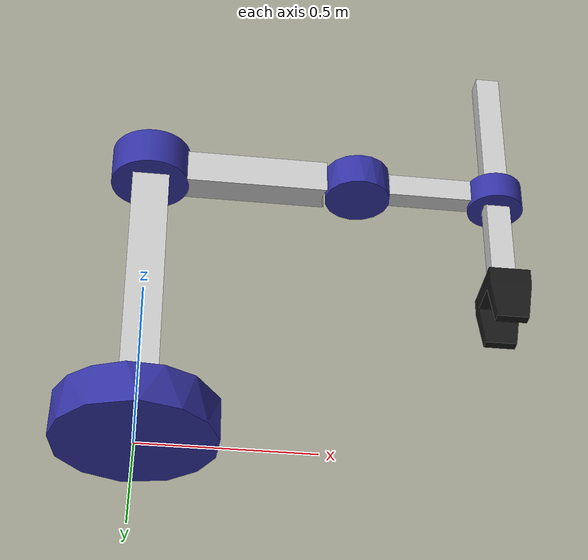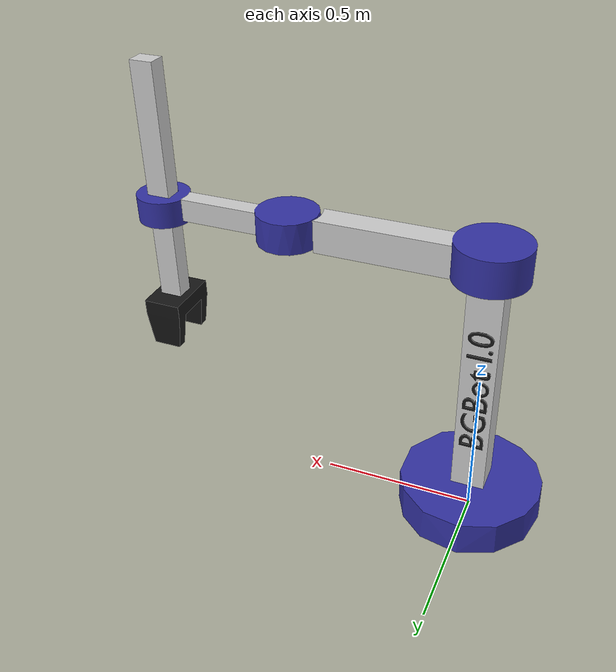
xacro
<?xml version="1.0" ?>

<robot name="robotiq_85_gripper" xmlns:xacro="http://ros.org/wiki/xacro">

  <!-- Properties  -->
  <xacro:property name="height_from_floor" value="0"/>

  <xacro:property name="base_height" value="0.115"/>
  <xacro:property name="base_radius" value="0.231"/>
  <xacro:property name="base_mass" value="10.0"/>

  <xacro:property name="joint_radius" value="0.109"/>
  <xacro:property name="joint_height" value="0.08"/>
  <xacro:property name="joint_mass" value="0.3"/>

  <xacro:property name="link1_thick" value="0.109"/>
  <xacro:property name="link1_mass" value="0.8"/>

  <xacro:property name="link2_thick" value="0.087"/>
  <xacro:property name="link2_mass" value="0.4"/>

  <xacro:property name="link3_thick" value="0.06"/>
  <xacro:property name="link3_mass" value="0.3"/>

  <xacro:property name="link4_length" value="0.937"/>
  <xacro:property name="link4_thick" value="0.06"/>
  <xacro:property name="link4_mass" value="1.0"/>

  <xacro:property name="d1" value="0.87"/>
  <xacro:property name="a1" value="0.625"/>
  <xacro:property name="a2" value="0.425"/>
  <xacro:property name="l3" value="0.40"/>
  <xacro:property name="damping_value" value="1" />
  <xacro:property name="friction_value" value="1" />
  <material name="purple">
    <color rgba="0.252 0.246 .8 1"/>
  </material>
  <material name="white">
    <color rgba="1 1 1 1"/>
  </material>

  <!-- Some Userful Interial Macros -->
  <xacro:macro name="cylinder_inertia" params="r h m">
    <mass value="${m}" />
    <inertia  ixx="${(m/12)*((3*r*r)+(h*h))}"
              iyy="${(m/12)*((3*r*r)+(h*h))}"
              izz="${m}"
              ixy = "0" ixz = "0" iyz = "0" />
  </xacro:macro>

  <xacro:macro name="box_inertia" params="m x y z">
    <mass value="${m}" />
    <inertia  ixx="${m*(y*y+z*z)/12}"
              iyy="${m*(x*x+z*z)/12}"
              izz="${m*(x*x+z*z)/12}"
              ixy = "0" ixz = "0"  iyz = "0" />
  </xacro:macro>
  <xacro:macro name="sphere_inertia" params="m r">
    <mass value="${m}" />
    <inertia  ixx="${2*m*r*r/5}" ixy = "0" ixz = "0"
              iyy="${2*m*r*r/5}" iyz = "0"
              izz="${2*m*r*r/5}" />
  </xacro:macro>

  <!-- Links  -->
  <link name="base_world"/>
  <link name="base_link">
     <visual>
        <geometry>
           <mesh filename="file://$(find scara-description)/urdf/visual/base.dae"/>
        </geometry>
     </visual>
     <collision>
       <geometry>
          <mesh filename="file://$(find scara-description)/urdf/collision/base.dae"/>
       </geometry>
     </collision>
     <inertial>
        <origin xyz="0 0 ${base_height/2}" rpy="0 0 0" />
        <xacro:cylinder_inertia m="${base_mass}" r="${base_radius}" h="${base_height}" />
     </inertial>
  </link>
  <link name="link1">
      <visual>
        <geometry>
          <mesh filename="file://$(find scara-description)/urdf/visual/link1.dae"/>
        </geometry>
      </visual>
      <collision>
        <geometry>
          <mesh filename="file://$(find scara-description)/urdf/collision/link1.dae"/>
        </geometry>
      </collision>
      <inertial>
        <origin xyz="0 0 ${d1/2}"/>
        <xacro:box_inertia m="${base_mass}" x="${link1_thick}" y="${link1_thick}" z="${d1}" />
      </inertial>
  </link>
  <link name="link2">
     <visual>
       <geometry>
          <mesh filename="file://$(find scara-description)/urdf/visual/link2.dae"/>
       </geometry>
     </visual>
     <collision>
       <geometry>
          <mesh filename="file://$(find scara-description)/urdf/collision/link2.dae"/>
       </geometry>
     </collision>
     <inertial>
       <origin xyz="${a1/2} 0 ${link2_thick/2}"/>
       <xacro:box_inertia m="${link2_mass}" x="${a1}" y="${link2_thick}" z="${link2_thick}" />
    </inertial>
  </link>
  <link name="link3">
    <visual>
       <geometry>
          <mesh filename="file://$(find scara-description)/urdf/visual/link3.dae"/>
       </geometry>
    </visual>
    <collision>
      <geometry>
         <mesh filename="file://$(find scara-description)/urdf/collision/link3.dae"/>
      </geometry>
    </collision>
    <inertial>
      <origin xyz="${a2/2} 0 ${link3_thick/2}"/>
      <xacro:box_inertia m="${link3_mass}" x="${a2}" y="${link3_thick}" z="${link3_thick}" />
    </inertial>
  </link>
  <link name="link4">
    <visual>
       <geometry>
          <mesh filename="file://$(find scara-description)/urdf/visual/joint4.dae"/>
       </geometry>
    </visual>
    <collision>
      <geometry>
         <mesh filename="file://$(find scara-description)/urdf/collision/joint4.dae"/>
      </geometry>
    </collision>
    <inertial>
      <origin xyz="0 0 ${joint_height/2}"/>
      <xacro:cylinder_inertia m="${joint_mass}" r="${joint_radius}" h="${joint_height}" />
    </inertial>
  </link>
  <link name="tool">
    <visual>
      <geometry>
         <mesh filename="file://$(find scara-description)/urdf/collision/link4.dae"/>
      </geometry>
    </visual>
    <collision>
      <geometry>
         <mesh filename="file://$(find scara-description)/urdf/collision/link4.dae"/>
      </geometry>
    </collision>
    <inertial>
      <origin xyz="0 0 -${l3}"/>
      <xacro:box_inertia m="${link4_mass}" x="${link4_thick}" y="${link4_thick}" z="${link4_length}" />
    </inertial>
  </link>

  <!-- Joints -->
  <joint name="fixed1" type="fixed">
    <parent link="base_world"/>
    <child link="base_link"/>
    <origin xyz="0 0 ${height_from_floor}" rpy="0 0 0"/>
  </joint>
  <joint name="fixed2" type="fixed">
    <parent link="base_link"/>
    <child link="link1"/>
    <origin xyz="0 0 ${base_height}" rpy="0 0 0"/>
  </joint>
  <joint name="joint1" type="revolute">
    <parent link="link1"/>
    <child link="link2"/>
    <origin xyz="0 0 ${d1 - base_height}" rpy="0 0 0"/>
    <axis xyz="0 0 1" />
    <calibration rising="0.0"/>
    <dynamics damping="${damping_value}" friction="${friction_value}"/>
    <limit effort="30" velocity="1.0" lower="-3.14" upper="3.14" />
  </joint>
  <joint name="joint2" type="revolute">
    <parent link="link2"/>
    <child link="link3"/>
    <origin xyz="${a1} 0 0" rpy="0 0 0"/>
    <axis xyz="0 0 1" />
    <calibration rising="0.0"/>
    <dynamics damping="${damping_value}" friction="${friction_value}"/>
    <limit effort="30" velocity="1.0" lower="-3.14" upper="3.14" />
  </joint>
  <joint name="joint3" type="revolute">
    <parent link="link3"/>
    <child link="link4"/>
    <origin xyz="${a2} 0 0" rpy="0 0 0"/>
    <axis xyz="0 0 1" />
    <calibration rising="0.0"/>
    <dynamics damping="${damping_value}" friction="${friction_value}"/>
    <limit effort="30" velocity="1.0" lower="-3.14" upper="3.14" />
  </joint>
  <joint name="joint4" type="prismatic">
    <parent link="link4"/>
    <child link="tool"/>
    <origin xyz="0 0 -${l3}" rpy="3.14 0 0"/>
    <axis xyz="0 0 1" />
    <calibration rising="0.0"/>
    <dynamics damping="${damping_value}" friction="${friction_value}"/>
    <limit effort="30" velocity="1.0" lower="-0.2" upper="0.3" />
  </joint>

  <!-- ROS Control plugin for Gazebo -->
  <gazebo>
    <plugin name="gazebo_ros_control" filename="libgazebo_ros_control.so">
      <robotNamespace>/scara</robotNamespace>
    </plugin>
  </gazebo>

  <!-- Transmission -->
  <transmission name="jointTransmission1">
    <type>transmission_interface/SimpleTransmission</type>
    <actuator name="motor1">
      <mechanicalReduction>1</mechanicalReduction>
    </actuator>
    <joint name="joint1">
      <hardwareInterface>hardware_interface/EffortJointInterface</hardwareInterface>
    </joint>
  </transmission>
  <transmission name="jointTransmission2">
    <type>transmission_interface/SimpleTransmission</type>
    <actuator name="motor2">
      <mechanicalReduction>1</mechanicalReduction>
    </actuator>
    <joint name="joint2">
      <hardwareInterface>hardware_interface/EffortJointInterface</hardwareInterface>
    </joint>
  </transmission>
  <transmission name="jointTransmission3">
    <type>transmission_interface/SimpleTransmission</type>
    <actuator name="motor3">
      <mechanicalReduction>1</mechanicalReduction>
    </actuator>
    <joint name="joint3">
      <hardwareInterface>hardware_interface/EffortJointInterface</hardwareInterface>
    </joint>
  </transmission>
  <transmission name="jointTransmission4">
    <type>transmission_interface/SimpleTransmission</type>
    <actuator name="motor4">
      <mechanicalReduction>1</mechanicalReduction>
    </actuator>
    <joint name="joint4">
      <hardwareInterface>hardware_interface/EffortJointInterface</hardwareInterface>
    </joint>
  </transmission>
</robot>
